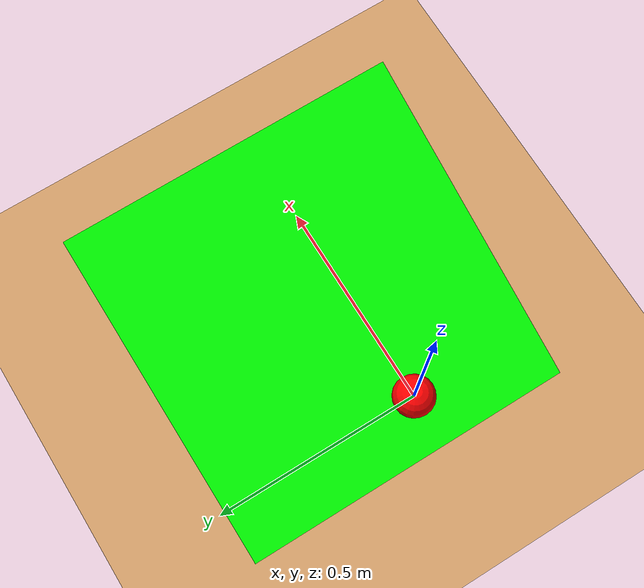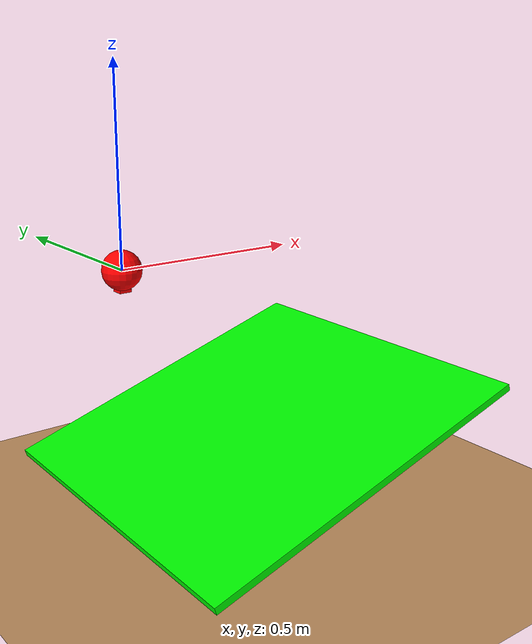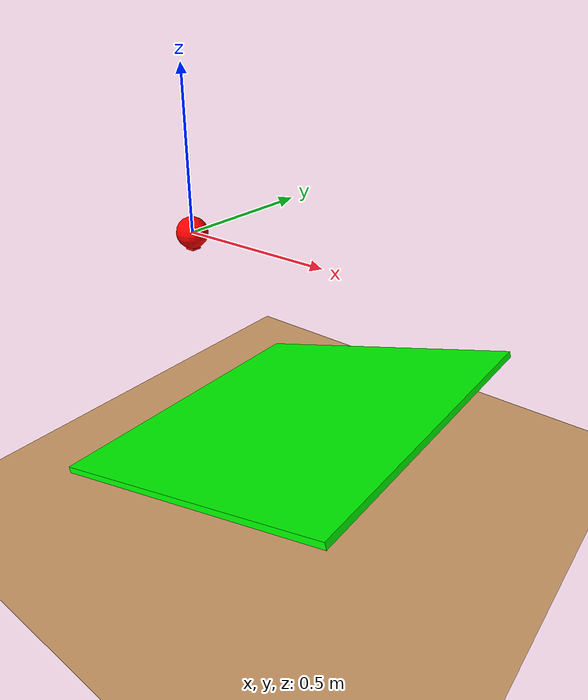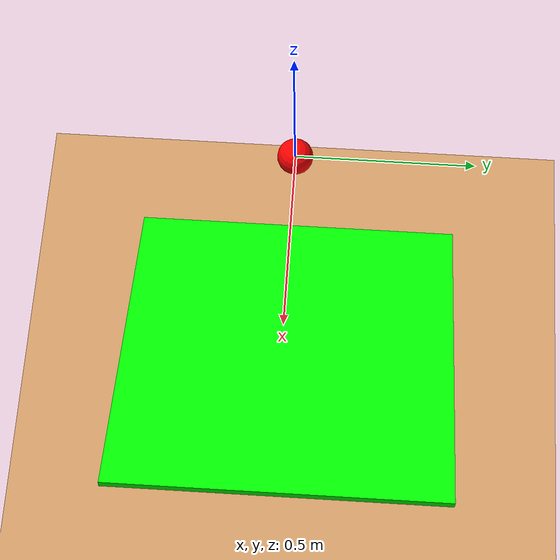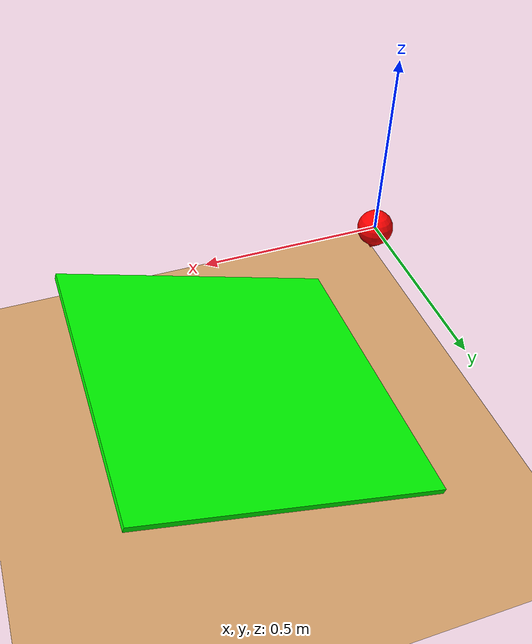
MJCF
<mujoco model="balldropbounce">
  <compiler angle="radian" coordinate="local" inertiafromgeom="true" meshdir="meshes/"/>
    <option	timestep="0.00125" iterations="50" solver="PGS" tolerance="1e-6" gravity="0 0 -9.81" >
    </option>

    <default>
        <geom contype='1' conaffinity='1' condim='6' rgba='0.8 0.6 .4 1' friction='.01 0.005 0.0001'
        margin="0.001" solref=".04 .1" solimp=".8 .8 .1"/>
    </default>
    <custom>
        <numeric name="snsr_covar" size="15" data="
        1e-2
        1e-6
        1e-0
        1e-1
        1e-6
        1e-3
        1e-0
        1e-0
        1e-0
        1e-0
        1e-0
        1e-9
        1e-0
        1e-0
        1e-0
        "
        />
<!-- Accelerometer -->
<!-- Gyro          -->
<!-- Force         -->
<!-- Torque        -->
<!-- JointPos      -->
<!-- JointVel      -->
<!-- TendonPos     -->
<!-- TendonVel     -->
<!-- ActuatorPos   -->
<!-- ActuatorVel   -->
<!-- ActuatorFrc   -->
<!-- SitePos       -->
<!-- SiteQuat      -->
<!-- Magnetometer  -->
<!-- Default       -->
      <numeric name="covar_diag" size="6" data="
        1e-1
        1e-1
        1e-1
        1e-1
        1e-1
        1e-1
        "
        />
    </custom>
    <asset>
      <material name="boring" reflectance="0.00005" rgba="0.7 0.6 0.6 1" shininess="1" specular=".1"/>
    </asset>

    <worldbody>
      <geom material="boring" pos="0 0 -.75" size="1.5 1.5 1.5" type="plane"/>
      <geom material="boring" rgba="0 1 0 1" pos=".4 0 -.5" name="box" type="box" size=".5 .5 .01" euler="0 -.3 0"/>

      <body pos="0 0 0">
        <joint name="rootx" type="slide" axis="1 0 0" pos="0 0 0" limited="false" />
        <joint name="rooty" type="slide" axis="0 1 0" pos="0 0 0" limited="false" />
        <joint name="rootz" type="slide" axis="0 0 1" pos="0 0 0" limited="false" />

        <joint name="roota" type="hinge" axis="1 0 0" pos="0 0 0" limited="false" />
        <joint name="rootb" type="hinge" axis="0 1 0" pos="0 0 0" limited="false" />
        <joint name="rootc" type="hinge" axis="0 0 1" pos="0 0 0" limited="false" />

        <geom name="ball" type="sphere" size="0.05" rgba="1 0 0 1"/>

        <site name="imu" pos="0 0 -.05" type="box" size="0.0158 0.0158 0.004" rgba="1 0 0 1" />

      </body>
    </worldbody>

    <sensor>
      <jointpos joint="rootx" />
      <jointpos joint="rooty" />
      <jointpos joint="rootz" />
      <jointvel joint="rootx" />
      <jointvel joint="rooty" />
      <jointvel joint="rootz" />

     <gyro name="gyro"           site="imu" />

    </sensor>

    <actuator>
      <motor name='lat_movement1' 	joint='rootx'/>
      <motor name='lat_movement2'   joint='rooty'/>
      <motor name='lat_movement3'   joint='rootz'/>

    </actuator>

  </mujoco>
